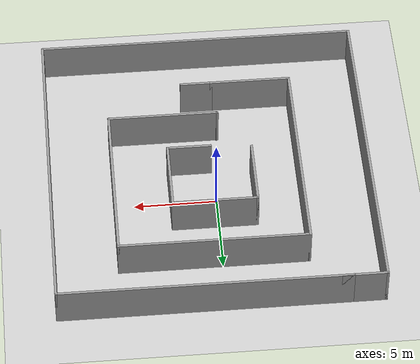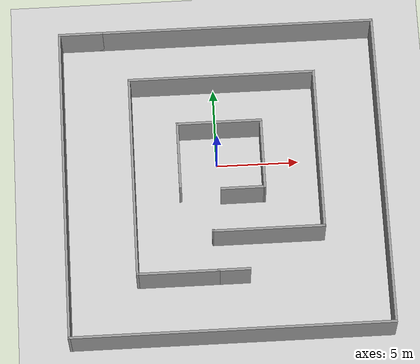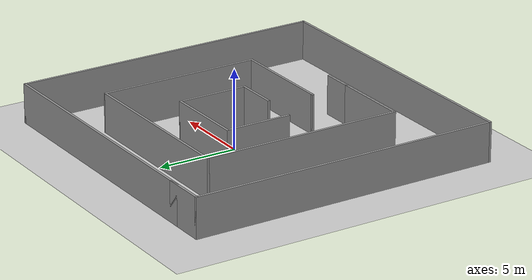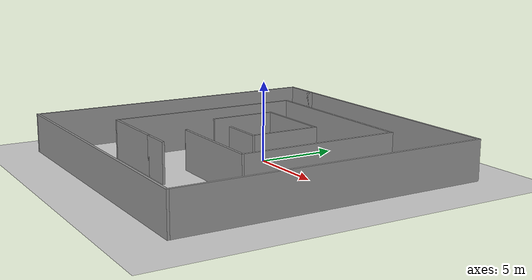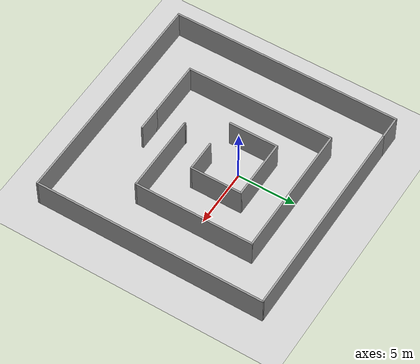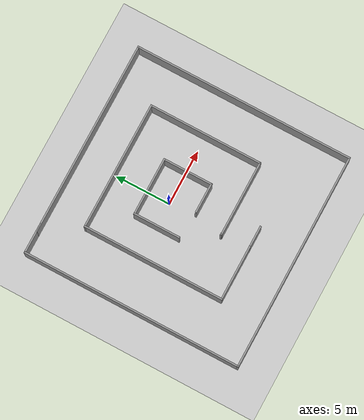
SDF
<sdf version="1.7">
 <world name="default">
  <light name="sun" type="directional">
   <pose>0 0 10 0 -0 0</pose>
   <diffuse>0.8 0.8 0.8 1</diffuse>
   <specular>0.2 0.2 0.2 1</specular>
   <attenuation>
    <range>1000</range>
    <constant>0.9</constant>
    <linear>0.01</linear>
    <quadratic>0.001</quadratic>
   </attenuation>
   <direction>-0.5 0.1 -0.9</direction>
   <spot><inner_angle>0</inner_angle><outer_angle>0</outer_angle><falloff>0</falloff></spot>
  </light>
  <model name="ground_plane">
   <static>1</static>
   <link name="link">
    <collision name="collision">
     <geometry><plane><normal>0 0 1</normal><size>100 100</size></plane></geometry>
     <surface><friction><ode><mu>100</mu><mu2>50</mu2></ode></friction></surface>
    </collision>
    <visual name="visual">
     <cast_shadows>0</cast_shadows>
     <geometry><plane><normal>0 0 1</normal><size>100 100</size></plane></geometry>
     <material>
      <script><uri>file://media/materials/scripts/gazebo.material</uri><name>Gazebo/Grey</name></script>
     </material>
    </visual>
   </link>
  </model>
  <gravity>0 0 -9.8</gravity>
  <magnetic_field>6e-06 2.3e-05 -4.2e-05</magnetic_field>
  <atmosphere type="adiabatic"/>
  <physics type="ode">
   <max_step_size>0.001</max_step_size>
   <real_time_factor>1</real_time_factor>
   <real_time_update_rate>1000</real_time_update_rate>
  </physics>
  <scene><ambient>0.4 0.4 0.4 1</ambient><background>0.7 0.7 0.7 1</background><shadows>1</shadows></scene>
  <spherical_coordinates>
   <surface_model>EARTH_WGS84</surface_model>
   <latitude_deg>0</latitude_deg>
   <longitude_deg>0</longitude_deg>
   <elevation>0</elevation>
   <heading_deg>0</heading_deg>
  </spherical_coordinates>
  <model name="maze">
   <pose>0.343395 -1.54587 0 0 -0 0</pose>
   <link name="Wall_12">
    <collision name="Wall_12_Collision">
     <geometry><box><size>0.15 0.15 2.5</size></box></geometry>
     <pose>0 0 1.25 0 -0 0</pose>
    </collision>
    <visual name="Wall_12_Visual">
     <pose>0 0 1.25 0 -0 0</pose>
     <geometry><box><size>0.15 0.15 2.5</size></box></geometry>
     <material>
      <script><uri>file://media/materials/scripts/gazebo.material</uri><name>Gazebo/Grey</name></script>
      <ambient>1 1 1 1</ambient>
     </material>
     <meta><layer>0</layer></meta>
    </visual>
    <pose>-0.822816 -3.53009 0 0 -0 0</pose>
   </link>
   <link name="Wall_18">
    <collision name="Wall_18_Collision">
     <geometry><box><size>11.5 0.15 2.5</size></box></geometry>
     <pose>0 0 1.25 0 -0 0</pose>
    </collision>
    <visual name="Wall_18_Visual">
     <pose>0 0 1.25 0 -0 0</pose>
     <geometry><box><size>11.5 0.15 2.5</size></box></geometry>
     <material>
      <script><uri>file://media/materials/scripts/gazebo.material</uri><name>Gazebo/Grey</name></script>
      <ambient>1 1 1 1</ambient>
     </material>
     <meta><layer>0</layer></meta>
    </visual>
    <pose>0.180419 6.53724 0 0 -0 0</pose>
   </link>
   <link name="Wall_19">
    <collision name="Wall_19_Collision">
     <geometry><box><size>10.25 0.15 2.5</size></box></geometry>
     <pose>0 0 1.25 0 -0 0</pose>
    </collision>
    <visual name="Wall_19_Visual">
     <pose>0 0 1.25 0 -0 0</pose>
     <geometry><box><size>10.25 0.15 2.5</size></box></geometry>
     <material>
      <script><uri>file://media/materials/scripts/gazebo.material</uri><name>Gazebo/Grey</name></script>
      <ambient>1 1 1 1</ambient>
     </material>
     <meta><layer>0</layer></meta>
    </visual>
    <pose>5.85542 1.48724 0 0 -0 -1.5708</pose>
   </link>
   <link name="Wall_20">
    <collision name="Wall_20_Collision">
     <geometry><box><size>6.75 0.15 2.5</size></box></geometry>
     <pose>0 0 1.25 0 -0 0</pose>
    </collision>
    <visual name="Wall_20_Visual">
     <pose>0 0 1.25 0 -0 0</pose>
     <geometry><box><size>6.75 0.15 2.5</size></box></geometry>
     <material>
      <script><uri>file://media/materials/scripts/gazebo.material</uri><name>Gazebo/Grey</name></script>
      <ambient>1 1 1 1</ambient>
     </material>
     <meta><layer>0</layer></meta>
    </visual>
    <pose>2.55542 -3.56276 0 0 -0 3.14159</pose>
   </link>
   <link name="Wall_24">
    <collision name="Wall_24_Collision">
     <geometry><box><size>12.75 0.15 2.5</size></box></geometry>
     <pose>0 0 1.25 0 -0 0</pose>
    </collision>
    <visual name="Wall_24_Visual">
     <pose>0 0 1.25 0 -0 0</pose>
     <geometry><box><size>12.75 0.15 2.5</size></box></geometry>
     <material>
      <script><uri>file://media/materials/scripts/gazebo.material</uri><name>Gazebo/Grey</name></script>
      <ambient>1 1 1 1</ambient>
     </material>
     <meta><layer>0</layer></meta>
    </visual>
    <pose>-5.49458 0.237237 0 0 -0 -1.5708</pose>
   </link>
   <link name="Wall_25">
    <collision name="Wall_25_Collision">
     <geometry><box><size>5 0.15 2.5</size></box></geometry>
     <pose>0 0 1.25 0 -0 0</pose>
    </collision>
    <visual name="Wall_25_Visual">
     <pose>0 0 1.25 0 -0 0</pose>
     <geometry><box><size>5 0.15 2.5</size></box></geometry>
     <material>
      <script><uri>file://media/materials/scripts/gazebo.material</uri><name>Gazebo/Grey</name></script>
      <ambient>1 1 1 1</ambient>
     </material>
     <meta><layer>0</layer></meta>
    </visual>
    <pose>-3.06958 -6.06276 0 0 -0 0</pose>
   </link>
   <link name="Wall_26">
    <collision name="Wall_26_Collision">
     <geometry><box><size>2 0.15 2.5</size></box></geometry>
     <pose>0 0 1.25 0 -0 0</pose>
    </collision>
    <visual name="Wall_26_Visual">
     <pose>0 0 1.25 0 -0 0</pose>
     <geometry><box><size>2 0.15 2.5</size></box></geometry>
     <material>
      <script><uri>file://media/materials/scripts/gazebo.material</uri><name>Gazebo/Grey</name></script>
      <ambient>1 1 1 1</ambient>
     </material>
     <meta><layer>0</layer></meta>
    </visual>
    <pose>0.280419 -6.06276 0 0 -0 0</pose>
   </link>
   <link name="Wall_29">
    <collision name="Wall_29_Collision">
     <geometry><box><size>17.5 0.15 2.5</size></box></geometry>
     <pose>0 0 1.25 0 -0 0</pose>
    </collision>
    <visual name="Wall_29_Visual">
     <pose>0 0 1.25 0 -0 0</pose>
     <geometry><box><size>17.5 0.15 2.5</size></box></geometry>
     <material>
      <script><uri>file://media/materials/scripts/gazebo.material</uri><name>Gazebo/Grey</name></script>
      <ambient>1 1 1 1</ambient>
     </material>
     <meta><layer>0</layer></meta>
    </visual>
    <pose>1 9.8 0 0 -0 0</pose>
   </link>
   <link name="Wall_30">
    <collision name="Wall_30_Collision">
     <geometry><box><size>19.75 0.15 2.5</size></box></geometry>
     <pose>0 0 1.25 0 -0 0</pose>
    </collision>
    <visual name="Wall_30_Visual">
     <pose>0 0 1.25 0 -0 0</pose>
     <geometry><box><size>19.75 0.15 2.5</size></box></geometry>
     <material>
      <script><uri>file://media/materials/scripts/gazebo.material</uri><name>Gazebo/Grey</name></script>
      <ambient>1 1 1 1</ambient>
     </material>
     <meta><layer>0</layer></meta>
    </visual>
    <pose>9.675 0 0 0 -0 -1.5708</pose>
   </link>
   <link name="Wall_31">
    <collision name="Wall_31_Collision">
     <geometry><box><size>19.5 0.15 2.5</size></box></geometry>
     <pose>0 0 1.25 0 -0 0</pose>
    </collision>
    <visual name="Wall_31_Visual">
     <pose>0 0 1.25 0 -0 0</pose>
     <geometry><box><size>19.5 0.15 2.5</size></box></geometry>
     <material>
      <script><uri>file://media/materials/scripts/gazebo.material</uri><name>Gazebo/Grey</name></script>
      <ambient>1 1 1 1</ambient>
     </material>
     <meta><layer>0</layer></meta>
    </visual>
    <pose>-0 -9.8 0 0 -0 3.14159</pose>
   </link>
   <link name="Wall_32">
    <collision name="Wall_32_Collision">
     <geometry><box><size>19.75 0.15 2.5</size></box></geometry>
     <pose>0 0 1.25 0 -0 0</pose>
    </collision>
    <visual name="Wall_32_Visual">
     <pose>0 0 1.25 0 -0 0</pose>
     <geometry><box><size>19.75 0.15 2.5</size></box></geometry>
     <material>
      <script><uri>file://media/materials/scripts/gazebo.material</uri><name>Gazebo/Grey</name></script>
      <ambient>1 1 1 1</ambient>
     </material>
     <meta><layer>0</layer></meta>
    </visual>
    <pose>-9.675 0 0 0 -0 1.5708</pose>
   </link>
   <link name="Wall_33">
    <collision name="Wall_33_Collision">
     <geometry><box><size>2.75 0.15 2.5</size></box></geometry>
     <pose>0 0 1.25 0 -0 0</pose>
    </collision>
    <visual name="Wall_33_Visual">
     <pose>0 0 1.25 0 -0 0</pose>
     <geometry><box><size>2.75 0.15 2.5</size></box></geometry>
     <material>
      <script><uri>file://media/materials/scripts/gazebo.material</uri><name>Gazebo/Grey</name></script>
      <ambient>1 1 1 1</ambient>
     </material>
     <meta><layer>0</layer></meta>
    </visual>
    <pose>-8.375 9.8 0 0 -0 0</pose>
   </link>
   <link name="Wall_5">
    <collision name="Wall_5_Collision">
     <geometry><box><size>4.25 0.15 2.5</size></box></geometry>
     <pose>0 0 1.25 0 -0 0</pose>
    </collision>
    <visual name="Wall_5_Visual">
     <pose>0 0 1.25 0 -0 0</pose>
     <geometry><box><size>4.25 0.15 2.5</size></box></geometry>
     <material>
      <script><uri>file://media/materials/scripts/gazebo.material</uri><name>Gazebo/Grey</name></script>
      <ambient>1 1 1 1</ambient>
     </material>
     <meta><layer>0</layer></meta>
    </visual>
    <pose>-2.67184 1.42294 0 0 -0 1.5708</pose>
   </link>
   <link name="Wall_6">
    <collision name="Wall_6_Collision">
     <geometry><box><size>5.25 0.15 2.5</size></box></geometry>
     <pose>0 0 1.25 0 -0 0</pose>
    </collision>
    <visual name="Wall_6_Visual">
     <pose>0 0 1.25 0 -0 0</pose>
     <geometry><box><size>5.25 0.15 2.5</size></box></geometry>
     <material>
      <script><uri>file://media/materials/scripts/gazebo.material</uri><name>Gazebo/Grey</name></script>
      <ambient>1 1 1 1</ambient>
     </material>
     <meta><layer>0</layer></meta>
    </visual>
    <pose>-0.121837 3.47294 0 0 -0 0</pose>
   </link>
   <link name="Wall_7">
    <collision name="Wall_7_Collision">
     <geometry><box><size>4.5 0.15 2.5</size></box></geometry>
     <pose>0 0 1.25 0 -0 0</pose>
    </collision>
    <visual name="Wall_7_Visual">
     <pose>0 0 1.25 0 -0 0</pose>
     <geometry><box><size>4.5 0.15 2.5</size></box></geometry>
     <material>
      <script><uri>file://media/materials/scripts/gazebo.material</uri><name>Gazebo/Grey</name></script>
      <ambient>1 1 1 1</ambient>
     </material>
     <meta><layer>0</layer></meta>
    </visual>
    <pose>2.42816 1.29794 0 0 -0 -1.5708</pose>
   </link>
   <link name="Wall_8">
    <collision name="Wall_8_Collision">
     <geometry><box><size>2.75 0.15 2.5</size></box></geometry>
     <pose>0 0 1.25 0 -0 0</pose>
    </collision>
    <visual name="Wall_8_Visual">
     <pose>0 0 1.25 0 -0 0</pose>
     <geometry><box><size>2.75 0.15 2.5</size></box></geometry>
     <material>
      <script><uri>file://media/materials/scripts/gazebo.material</uri><name>Gazebo/Grey</name></script>
      <ambient>1 1 1 1</ambient>
     </material>
     <meta><layer>0</layer></meta>
    </visual>
    <pose>1.12816 -0.877058 0 0 -0 3.14159</pose>
   </link>
   <static>1</static>
  </model>
 </world>
</sdf>
